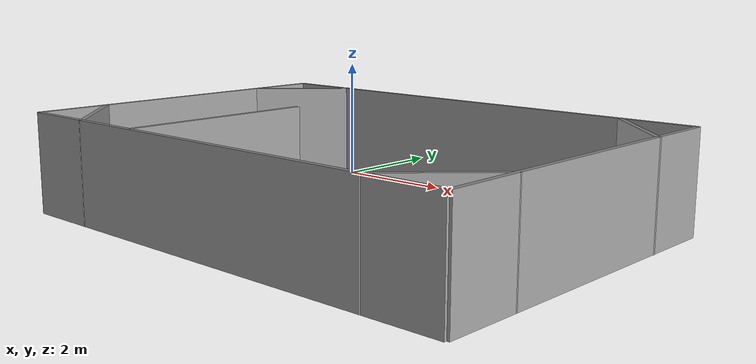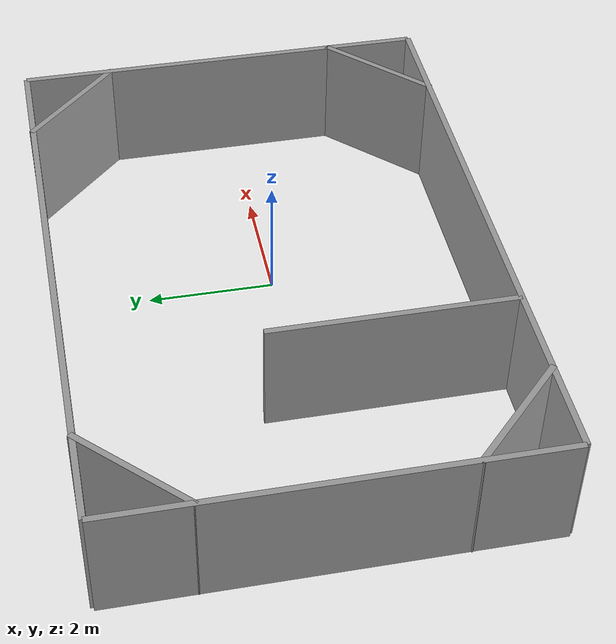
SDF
<?xml version='1.0'?>
<sdf version='1.6'>
  <model name='room2'>
    <link name='outer_0'>
      <inertial>
        <mass>1</mass>
        <inertia>
          <ixx>0.166667</ixx>
          <ixy>0</ixy>
          <ixz>0</ixz>
          <iyy>0.166667</iyy>
          <iyz>0</iyz>
          <izz>0.166667</izz>
        </inertia>
        <pose frame=''>0 0 0 0 -0 0</pose>
      </inertial>
      <pose frame=''>0 -3.5 0 0 -0 0</pose>
      <gravity>1</gravity>
      <self_collide>0</self_collide>
      <kinematic>0</kinematic>
      <enable_wind>0</enable_wind>
      <visual name='visual'>
        <pose frame=''>0 0 0 0 -0 0</pose>
        <geometry>
          <box>
            <size>10 0.1 2</size>
          </box>
        </geometry>
        <material>
          <lighting>1</lighting>
          <script>
            <uri>file://media/materials/scripts/gazebo.material</uri>
            <name>Gazebo/Grey</name>
          </script>
          <shader type='pixel'>
            <normal_map>__default__</normal_map>
          </shader>
          <ambient>0.3 0.3 0.3 1</ambient>
          <diffuse>0.7 0.7 0.7 1</diffuse>
          <specular>0.01 0.01 0.01 1</specular>
          <emissive>0 0 0 1</emissive>
        </material>
        <transparency>0</transparency>
        <cast_shadows>1</cast_shadows>
      </visual>
      <collision name='collision'>
        <laser_retro>0</laser_retro>
        <max_contacts>10</max_contacts>
        <pose frame=''>0 0 0 0 -0 0</pose>
        <geometry>
          <box>
            <size>10 0.1 2</size>
          </box>
        </geometry>
        <surface>
          <friction>
            <ode>
              <mu>1</mu>
              <mu2>1</mu2>
              <fdir1>0 0 0</fdir1>
              <slip1>0</slip1>
              <slip2>0</slip2>
            </ode>
            <torsional>
              <coefficient>1</coefficient>
              <patch_radius>0</patch_radius>
              <surface_radius>0</surface_radius>
              <use_patch_radius>1</use_patch_radius>
              <ode>
                <slip>0</slip>
              </ode>
            </torsional>
          </friction>
          <bounce>
            <restitution_coefficient>0</restitution_coefficient>
            <threshold>1e+06</threshold>
          </bounce>
          <contact>
            <collide_without_contact>0</collide_without_contact>
            <collide_without_contact_bitmask>1</collide_without_contact_bitmask>
            <collide_bitmask>1</collide_bitmask>
            <ode>
              <soft_cfm>0</soft_cfm>
              <soft_erp>0.2</soft_erp>
              <kp>1e+13</kp>
              <kd>1</kd>
              <max_vel>0.01</max_vel>
              <min_depth>0</min_depth>
            </ode>
            <bullet>
              <split_impulse>1</split_impulse>
              <split_impulse_penetration_threshold>-0.01</split_impulse_penetration_threshold>
              <soft_cfm>0</soft_cfm>
              <soft_erp>0.2</soft_erp>
              <kp>1e+13</kp>
              <kd>1</kd>
            </bullet>
          </contact>
        </surface>
      </collision>
    </link>
    <link name='inner_0'>
      <inertial>
        <mass>1</mass>
        <inertia>
          <ixx>0.166667</ixx>
          <ixy>0</ixy>
          <ixz>0</ixz>
          <iyy>0.166667</iyy>
          <iyz>0</iyz>
          <izz>0.166667</izz>
        </inertia>
        <pose frame=''>0 0 0 0 -0 0</pose>
      </inertial>
      <pose frame=''>-2 -1.5 0 0 -0 0</pose>
      <gravity>1</gravity>
      <self_collide>0</self_collide>
      <kinematic>0</kinematic>
      <enable_wind>0</enable_wind>
      <visual name='visual'>
        <pose frame=''>0 0 0 0 -0 0</pose>
        <geometry>
          <box>
            <size>0.1 4 2</size>
          </box>
        </geometry>
        <material>
          <lighting>1</lighting>
          <script>
            <uri>file://media/materials/scripts/gazebo.material</uri>
            <name>Gazebo/Grey</name>
          </script>
          <shader type='pixel'>
            <normal_map>__default__</normal_map>
          </shader>
          <ambient>0.3 0.3 0.3 1</ambient>
          <diffuse>0.7 0.7 0.7 1</diffuse>
          <specular>0.01 0.01 0.01 1</specular>
          <emissive>0 0 0 1</emissive>
        </material>
        <transparency>0</transparency>
        <cast_shadows>1</cast_shadows>
      </visual>
      <collision name='collision'>
        <laser_retro>0</laser_retro>
        <max_contacts>10</max_contacts>
        <pose frame=''>0 0 0 0 -0 0</pose>
        <geometry>
          <box>
            <size>0.1 4 2</size>
          </box>
        </geometry>
        <surface>
          <friction>
            <ode>
              <mu>1</mu>
              <mu2>1</mu2>
              <fdir1>0 0 0</fdir1>
              <slip1>0</slip1>
              <slip2>0</slip2>
            </ode>
            <torsional>
              <coefficient>1</coefficient>
              <patch_radius>0</patch_radius>
              <surface_radius>0</surface_radius>
              <use_patch_radius>1</use_patch_radius>
              <ode>
                <slip>0</slip>
              </ode>
            </torsional>
          </friction>
          <bounce>
            <restitution_coefficient>0</restitution_coefficient>
            <threshold>1e+06</threshold>
          </bounce>
          <contact>
            <collide_without_contact>0</collide_without_contact>
            <collide_without_contact_bitmask>1</collide_without_contact_bitmask>
            <collide_bitmask>1</collide_bitmask>
            <ode>
              <soft_cfm>0</soft_cfm>
              <soft_erp>0.2</soft_erp>
              <kp>1e+13</kp>
              <kd>1</kd>
              <max_vel>0.01</max_vel>
              <min_depth>0</min_depth>
            </ode>
            <bullet>
              <split_impulse>1</split_impulse>
              <split_impulse_penetration_threshold>-0.01</split_impulse_penetration_threshold>
              <soft_cfm>0</soft_cfm>
              <soft_erp>0.2</soft_erp>
              <kp>1e+13</kp>
              <kd>1</kd>
            </bullet>
          </contact>
        </surface>
      </collision>
    </link>
    <link name='inner_1'>
      <inertial>
        <mass>1</mass>
        <inertia>
          <ixx>0.166667</ixx>
          <ixy>0</ixy>
          <ixz>0</ixz>
          <iyy>0.166667</iyy>
          <iyz>0</iyz>
          <izz>0.166667</izz>
        </inertia>
        <pose frame=''>0 0 0 0 -0 0</pose>
      </inertial>
      <pose frame=''>-4.25 -2.75 0 0 -0 0.79</pose>
      <gravity>1</gravity>
      <self_collide>0</self_collide>
      <kinematic>0</kinematic>
      <enable_wind>0</enable_wind>
      <visual name='visual'>
        <pose frame=''>0 0 0 0 -0 0</pose>
        <geometry>
          <box>
            <size>0.1 2.2 2</size>
          </box>
        </geometry>
        <material>
          <lighting>1</lighting>
          <script>
            <uri>file://media/materials/scripts/gazebo.material</uri>
            <name>Gazebo/Grey</name>
          </script>
          <shader type='pixel'>
            <normal_map>__default__</normal_map>
          </shader>
          <ambient>0.3 0.3 0.3 1</ambient>
          <diffuse>0.7 0.7 0.7 1</diffuse>
          <specular>0.01 0.01 0.01 1</specular>
          <emissive>0 0 0 1</emissive>
        </material>
        <transparency>0</transparency>
        <cast_shadows>1</cast_shadows>
      </visual>
      <collision name='collision'>
        <laser_retro>0</laser_retro>
        <max_contacts>10</max_contacts>
        <pose frame=''>0 0 0 0 -0 0</pose>
        <geometry>
          <box>
            <size>0.1 2.2 2</size>
          </box>
        </geometry>
        <surface>
          <friction>
            <ode>
              <mu>1</mu>
              <mu2>1</mu2>
              <fdir1>0 0 0</fdir1>
              <slip1>0</slip1>
              <slip2>0</slip2>
            </ode>
            <torsional>
              <coefficient>1</coefficient>
              <patch_radius>0</patch_radius>
              <surface_radius>0</surface_radius>
              <use_patch_radius>1</use_patch_radius>
              <ode>
                <slip>0</slip>
              </ode>
            </torsional>
          </friction>
          <bounce>
            <restitution_coefficient>0</restitution_coefficient>
            <threshold>1e+06</threshold>
          </bounce>
          <contact>
            <collide_without_contact>0</collide_without_contact>
            <collide_without_contact_bitmask>1</collide_without_contact_bitmask>
            <collide_bitmask>1</collide_bitmask>
            <ode>
              <soft_cfm>0</soft_cfm>
              <soft_erp>0.2</soft_erp>
              <kp>1e+13</kp>
              <kd>1</kd>
              <max_vel>0.01</max_vel>
              <min_depth>0</min_depth>
            </ode>
            <bullet>
              <split_impulse>1</split_impulse>
              <split_impulse_penetration_threshold>-0.01</split_impulse_penetration_threshold>
              <soft_cfm>0</soft_cfm>
              <soft_erp>0.2</soft_erp>
              <kp>1e+13</kp>
              <kd>1</kd>
            </bullet>
          </contact>
        </surface>
      </collision>
    </link>
    <link name='inner_2'>
      <inertial>
        <mass>1</mass>
        <inertia>
          <ixx>0.166667</ixx>
          <ixy>0</ixy>
          <ixz>0</ixz>
          <iyy>0.166667</iyy>
          <iyz>0</iyz>
          <izz>0.166667</izz>
        </inertia>
        <pose frame=''>0 0 0 0 -0 0</pose>
      </inertial>
      <pose frame=''>-4.25 2.75 0 0 -0 2.36</pose>
      <gravity>1</gravity>
      <self_collide>0</self_collide>
      <kinematic>0</kinematic>
      <enable_wind>0</enable_wind>
      <visual name='visual'>
        <pose frame=''>0 0 0 0 -0 0</pose>
        <geometry>
          <box>
            <size>0.1 2.2 2</size>
          </box>
        </geometry>
        <material>
          <lighting>1</lighting>
          <script>
            <uri>file://media/materials/scripts/gazebo.material</uri>
            <name>Gazebo/Grey</name>
          </script>
          <shader type='pixel'>
            <normal_map>__default__</normal_map>
          </shader>
          <ambient>0.3 0.3 0.3 1</ambient>
          <diffuse>0.7 0.7 0.7 1</diffuse>
          <specular>0.01 0.01 0.01 1</specular>
          <emissive>0 0 0 1</emissive>
        </material>
        <transparency>0</transparency>
        <cast_shadows>1</cast_shadows>
      </visual>
      <collision name='collision'>
        <laser_retro>0</laser_retro>
        <max_contacts>10</max_contacts>
        <pose frame=''>0 0 0 0 -0 0</pose>
        <geometry>
          <box>
            <size>0.1 2.2 2</size>
          </box>
        </geometry>
        <surface>
          <friction>
            <ode>
              <mu>1</mu>
              <mu2>1</mu2>
              <fdir1>0 0 0</fdir1>
              <slip1>0</slip1>
              <slip2>0</slip2>
            </ode>
            <torsional>
              <coefficient>1</coefficient>
              <patch_radius>0</patch_radius>
              <surface_radius>0</surface_radius>
              <use_patch_radius>1</use_patch_radius>
              <ode>
                <slip>0</slip>
              </ode>
            </torsional>
          </friction>
          <bounce>
            <restitution_coefficient>0</restitution_coefficient>
            <threshold>1e+06</threshold>
          </bounce>
          <contact>
            <collide_without_contact>0</collide_without_contact>
            <collide_without_contact_bitmask>1</collide_without_contact_bitmask>
            <collide_bitmask>1</collide_bitmask>
            <ode>
              <soft_cfm>0</soft_cfm>
              <soft_erp>0.2</soft_erp>
              <kp>1e+13</kp>
              <kd>1</kd>
              <max_vel>0.01</max_vel>
              <min_depth>0</min_depth>
            </ode>
            <bullet>
              <split_impulse>1</split_impulse>
              <split_impulse_penetration_threshold>-0.01</split_impulse_penetration_threshold>
              <soft_cfm>0</soft_cfm>
              <soft_erp>0.2</soft_erp>
              <kp>1e+13</kp>
              <kd>1</kd>
            </bullet>
          </contact>
        </surface>
      </collision>
    </link>
    <link name='inner_3'>
      <inertial>
        <mass>1</mass>
        <inertia>
          <ixx>0.166667</ixx>
          <ixy>0</ixy>
          <ixz>0</ixz>
          <iyy>0.166667</iyy>
          <iyz>0</iyz>
          <izz>0.166667</izz>
        </inertia>
        <pose frame=''>0 0 0 0 -0 0</pose>
      </inertial>
      <pose frame=''>4.25 2.75 0 0 0 -2.35318</pose>
      <gravity>1</gravity>
      <self_collide>0</self_collide>
      <kinematic>0</kinematic>
      <enable_wind>0</enable_wind>
      <visual name='visual'>
        <pose frame=''>0 0 0 0 -0 0</pose>
        <geometry>
          <box>
            <size>0.1 2.2 2</size>
          </box>
        </geometry>
        <material>
          <lighting>1</lighting>
          <script>
            <uri>file://media/materials/scripts/gazebo.material</uri>
            <name>Gazebo/Grey</name>
          </script>
          <shader type='pixel'>
            <normal_map>__default__</normal_map>
          </shader>
          <ambient>0.3 0.3 0.3 1</ambient>
          <diffuse>0.7 0.7 0.7 1</diffuse>
          <specular>0.01 0.01 0.01 1</specular>
          <emissive>0 0 0 1</emissive>
        </material>
        <transparency>0</transparency>
        <cast_shadows>1</cast_shadows>
      </visual>
      <collision name='collision'>
        <laser_retro>0</laser_retro>
        <max_contacts>10</max_contacts>
        <pose frame=''>0 0 0 0 -0 0</pose>
        <geometry>
          <box>
            <size>0.1 2.2 2</size>
          </box>
        </geometry>
        <surface>
          <friction>
            <ode>
              <mu>1</mu>
              <mu2>1</mu2>
              <fdir1>0 0 0</fdir1>
              <slip1>0</slip1>
              <slip2>0</slip2>
            </ode>
            <torsional>
              <coefficient>1</coefficient>
              <patch_radius>0</patch_radius>
              <surface_radius>0</surface_radius>
              <use_patch_radius>1</use_patch_radius>
              <ode>
                <slip>0</slip>
              </ode>
            </torsional>
          </friction>
          <bounce>
            <restitution_coefficient>0</restitution_coefficient>
            <threshold>1e+06</threshold>
          </bounce>
          <contact>
            <collide_without_contact>0</collide_without_contact>
            <collide_without_contact_bitmask>1</collide_without_contact_bitmask>
            <collide_bitmask>1</collide_bitmask>
            <ode>
              <soft_cfm>0</soft_cfm>
              <soft_erp>0.2</soft_erp>
              <kp>1e+13</kp>
              <kd>1</kd>
              <max_vel>0.01</max_vel>
              <min_depth>0</min_depth>
            </ode>
            <bullet>
              <split_impulse>1</split_impulse>
              <split_impulse_penetration_threshold>-0.01</split_impulse_penetration_threshold>
              <soft_cfm>0</soft_cfm>
              <soft_erp>0.2</soft_erp>
              <kp>1e+13</kp>
              <kd>1</kd>
            </bullet>
          </contact>
        </surface>
      </collision>
    </link>
    <link name='inner_4'>
      <inertial>
        <mass>1</mass>
        <inertia>
          <ixx>0.166667</ixx>
          <ixy>0</ixy>
          <ixz>0</ixz>
          <iyy>0.166667</iyy>
          <iyz>0</iyz>
          <izz>0.166667</izz>
        </inertia>
        <pose frame=''>0 0 0 0 -0 0</pose>
      </inertial>
      <pose frame=''>4.25 -2.75 0 0 0 -0.783185</pose>
      <gravity>1</gravity>
      <self_collide>0</self_collide>
      <kinematic>0</kinematic>
      <enable_wind>0</enable_wind>
      <visual name='visual'>
        <pose frame=''>0 0 0 0 -0 0</pose>
        <geometry>
          <box>
            <size>0.1 2.2 2</size>
          </box>
        </geometry>
        <material>
          <lighting>1</lighting>
          <script>
            <uri>file://media/materials/scripts/gazebo.material</uri>
            <name>Gazebo/Grey</name>
          </script>
          <shader type='pixel'>
            <normal_map>__default__</normal_map>
          </shader>
          <ambient>0.3 0.3 0.3 1</ambient>
          <diffuse>0.7 0.7 0.7 1</diffuse>
          <specular>0.01 0.01 0.01 1</specular>
          <emissive>0 0 0 1</emissive>
        </material>
        <transparency>0</transparency>
        <cast_shadows>1</cast_shadows>
      </visual>
      <collision name='collision'>
        <laser_retro>0</laser_retro>
        <max_contacts>10</max_contacts>
        <pose frame=''>0 0 0 0 -0 0</pose>
        <geometry>
          <box>
            <size>0.1 2.2 2</size>
          </box>
        </geometry>
        <surface>
          <friction>
            <ode>
              <mu>1</mu>
              <mu2>1</mu2>
              <fdir1>0 0 0</fdir1>
              <slip1>0</slip1>
              <slip2>0</slip2>
            </ode>
            <torsional>
              <coefficient>1</coefficient>
              <patch_radius>0</patch_radius>
              <surface_radius>0</surface_radius>
              <use_patch_radius>1</use_patch_radius>
              <ode>
                <slip>0</slip>
              </ode>
            </torsional>
          </friction>
          <bounce>
            <restitution_coefficient>0</restitution_coefficient>
            <threshold>1e+06</threshold>
          </bounce>
          <contact>
            <collide_without_contact>0</collide_without_contact>
            <collide_without_contact_bitmask>1</collide_without_contact_bitmask>
            <collide_bitmask>1</collide_bitmask>
            <ode>
              <soft_cfm>0</soft_cfm>
              <soft_erp>0.2</soft_erp>
              <kp>1e+13</kp>
              <kd>1</kd>
              <max_vel>0.01</max_vel>
              <min_depth>0</min_depth>
            </ode>
            <bullet>
              <split_impulse>1</split_impulse>
              <split_impulse_penetration_threshold>-0.01</split_impulse_penetration_threshold>
              <soft_cfm>0</soft_cfm>
              <soft_erp>0.2</soft_erp>
              <kp>1e+13</kp>
              <kd>1</kd>
            </bullet>
          </contact>
        </surface>
      </collision>
    </link>
    <link name='outer_1'>
      <inertial>
        <mass>1</mass>
        <inertia>
          <ixx>0.166667</ixx>
          <ixy>0</ixy>
          <ixz>0</ixz>
          <iyy>0.166667</iyy>
          <iyz>0</iyz>
          <izz>0.166667</izz>
        </inertia>
        <pose frame=''>0 0 0 0 -0 0</pose>
      </inertial>
      <pose frame=''>0 3.5 0 0 -0 0</pose>
      <gravity>1</gravity>
      <self_collide>0</self_collide>
      <kinematic>0</kinematic>
      <enable_wind>0</enable_wind>
      <visual name='visual'>
        <pose frame=''>0 0 0 0 -0 0</pose>
        <geometry>
          <box>
            <size>10 0.1 2</size>
          </box>
        </geometry>
        <material>
          <lighting>1</lighting>
          <script>
            <uri>file://media/materials/scripts/gazebo.material</uri>
            <name>Gazebo/Grey</name>
          </script>
          <shader type='pixel'>
            <normal_map>__default__</normal_map>
          </shader>
          <ambient>0.3 0.3 0.3 1</ambient>
          <diffuse>0.7 0.7 0.7 1</diffuse>
          <specular>0.01 0.01 0.01 1</specular>
          <emissive>0 0 0 1</emissive>
        </material>
        <transparency>0</transparency>
        <cast_shadows>1</cast_shadows>
      </visual>
      <collision name='collision'>
        <laser_retro>0</laser_retro>
        <max_contacts>10</max_contacts>
        <pose frame=''>0 0 0 0 -0 0</pose>
        <geometry>
          <box>
            <size>10 0.1 2</size>
          </box>
        </geometry>
        <surface>
          <friction>
            <ode>
              <mu>1</mu>
              <mu2>1</mu2>
              <fdir1>0 0 0</fdir1>
              <slip1>0</slip1>
              <slip2>0</slip2>
            </ode>
            <torsional>
              <coefficient>1</coefficient>
              <patch_radius>0</patch_radius>
              <surface_radius>0</surface_radius>
              <use_patch_radius>1</use_patch_radius>
              <ode>
                <slip>0</slip>
              </ode>
            </torsional>
          </friction>
          <bounce>
            <restitution_coefficient>0</restitution_coefficient>
            <threshold>1e+06</threshold>
          </bounce>
          <contact>
            <collide_without_contact>0</collide_without_contact>
            <collide_without_contact_bitmask>1</collide_without_contact_bitmask>
            <collide_bitmask>1</collide_bitmask>
            <ode>
              <soft_cfm>0</soft_cfm>
              <soft_erp>0.2</soft_erp>
              <kp>1e+13</kp>
              <kd>1</kd>
              <max_vel>0.01</max_vel>
              <min_depth>0</min_depth>
            </ode>
            <bullet>
              <split_impulse>1</split_impulse>
              <split_impulse_penetration_threshold>-0.01</split_impulse_penetration_threshold>
              <soft_cfm>0</soft_cfm>
              <soft_erp>0.2</soft_erp>
              <kp>1e+13</kp>
              <kd>1</kd>
            </bullet>
          </contact>
        </surface>
      </collision>
    </link>
    <link name='outer_3'>
      <inertial>
        <mass>1</mass>
        <inertia>
          <ixx>0.166667</ixx>
          <ixy>0</ixy>
          <ixz>0</ixz>
          <iyy>0.166667</iyy>
          <iyz>0</iyz>
          <izz>0.166667</izz>
        </inertia>
        <pose frame=''>0 0 0 0 -0 0</pose>
      </inertial>
      <pose frame=''>5 0 0 0 -0 0</pose>
      <gravity>1</gravity>
      <self_collide>0</self_collide>
      <kinematic>0</kinematic>
      <enable_wind>0</enable_wind>
      <visual name='visual'>
        <pose frame=''>0 0 0 0 -0 0</pose>
        <geometry>
          <box>
            <size>0.1 7 2</size>
          </box>
        </geometry>
        <material>
          <lighting>1</lighting>
          <script>
            <uri>file://media/materials/scripts/gazebo.material</uri>
            <name>Gazebo/Grey</name>
          </script>
          <shader type='pixel'>
            <normal_map>__default__</normal_map>
          </shader>
          <ambient>0.3 0.3 0.3 1</ambient>
          <diffuse>0.7 0.7 0.7 1</diffuse>
          <specular>0.01 0.01 0.01 1</specular>
          <emissive>0 0 0 1</emissive>
        </material>
        <transparency>0</transparency>
        <cast_shadows>1</cast_shadows>
      </visual>
      <collision name='collision'>
        <laser_retro>0</laser_retro>
        <max_contacts>10</max_contacts>
        <pose frame=''>0 0 0 0 -0 0</pose>
        <geometry>
          <box>
            <size>0.1 7 2</size>
          </box>
        </geometry>
        <surface>
          <friction>
            <ode>
              <mu>1</mu>
              <mu2>1</mu2>
              <fdir1>0 0 0</fdir1>
              <slip1>0</slip1>
              <slip2>0</slip2>
            </ode>
            <torsional>
              <coefficient>1</coefficient>
              <patch_radius>0</patch_radius>
              <surface_radius>0</surface_radius>
              <use_patch_radius>1</use_patch_radius>
              <ode>
                <slip>0</slip>
              </ode>
            </torsional>
          </friction>
          <bounce>
            <restitution_coefficient>0</restitution_coefficient>
            <threshold>1e+06</threshold>
          </bounce>
          <contact>
            <collide_without_contact>0</collide_without_contact>
            <collide_without_contact_bitmask>1</collide_without_contact_bitmask>
            <collide_bitmask>1</collide_bitmask>
            <ode>
              <soft_cfm>0</soft_cfm>
              <soft_erp>0.2</soft_erp>
              <kp>1e+13</kp>
              <kd>1</kd>
              <max_vel>0.01</max_vel>
              <min_depth>0</min_depth>
            </ode>
            <bullet>
              <split_impulse>1</split_impulse>
              <split_impulse_penetration_threshold>-0.01</split_impulse_penetration_threshold>
              <soft_cfm>0</soft_cfm>
              <soft_erp>0.2</soft_erp>
              <kp>1e+13</kp>
              <kd>1</kd>
            </bullet>
          </contact>
        </surface>
      </collision>
    </link>
    <link name='outer_4'>
      <inertial>
        <mass>1</mass>
        <inertia>
          <ixx>0.166667</ixx>
          <ixy>0</ixy>
          <ixz>0</ixz>
          <iyy>0.166667</iyy>
          <iyz>0</iyz>
          <izz>0.166667</izz>
        </inertia>
        <pose frame=''>0 0 0 0 -0 0</pose>
      </inertial>
      <pose frame=''>-5 0 0 0 -0 0</pose>
      <gravity>1</gravity>
      <self_collide>0</self_collide>
      <kinematic>0</kinematic>
      <enable_wind>0</enable_wind>
      <visual name='visual'>
        <pose frame=''>0 0 0 0 -0 0</pose>
        <geometry>
          <box>
            <size>0.1 7 2</size>
          </box>
        </geometry>
        <material>
          <lighting>1</lighting>
          <script>
            <uri>file://media/materials/scripts/gazebo.material</uri>
            <name>Gazebo/Grey</name>
          </script>
          <shader type='pixel'>
            <normal_map>__default__</normal_map>
          </shader>
          <ambient>0.3 0.3 0.3 1</ambient>
          <diffuse>0.7 0.7 0.7 1</diffuse>
          <specular>0.01 0.01 0.01 1</specular>
          <emissive>0 0 0 1</emissive>
        </material>
        <transparency>0</transparency>
        <cast_shadows>1</cast_shadows>
      </visual>
      <collision name='collision'>
        <laser_retro>0</laser_retro>
        <max_contacts>10</max_contacts>
        <pose frame=''>0 0 0 0 -0 0</pose>
        <geometry>
          <box>
            <size>0.1 7 2</size>
          </box>
        </geometry>
        <surface>
          <friction>
            <ode>
              <mu>1</mu>
              <mu2>1</mu2>
              <fdir1>0 0 0</fdir1>
              <slip1>0</slip1>
              <slip2>0</slip2>
            </ode>
            <torsional>
              <coefficient>1</coefficient>
              <patch_radius>0</patch_radius>
              <surface_radius>0</surface_radius>
              <use_patch_radius>1</use_patch_radius>
              <ode>
                <slip>0</slip>
              </ode>
            </torsional>
          </friction>
          <bounce>
            <restitution_coefficient>0</restitution_coefficient>
            <threshold>1e+06</threshold>
          </bounce>
          <contact>
            <collide_without_contact>0</collide_without_contact>
            <collide_without_contact_bitmask>1</collide_without_contact_bitmask>
            <collide_bitmask>1</collide_bitmask>
            <ode>
              <soft_cfm>0</soft_cfm>
              <soft_erp>0.2</soft_erp>
              <kp>1e+13</kp>
              <kd>1</kd>
              <max_vel>0.01</max_vel>
              <min_depth>0</min_depth>
            </ode>
            <bullet>
              <split_impulse>1</split_impulse>
              <split_impulse_penetration_threshold>-0.01</split_impulse_penetration_threshold>
              <soft_cfm>0</soft_cfm>
              <soft_erp>0.2</soft_erp>
              <kp>1e+13</kp>
              <kd>1</kd>
            </bullet>
          </contact>
        </surface>
      </collision>
    </link>
    <static>1</static>
    <allow_auto_disable>1</allow_auto_disable>
  </model>
</sdf>
